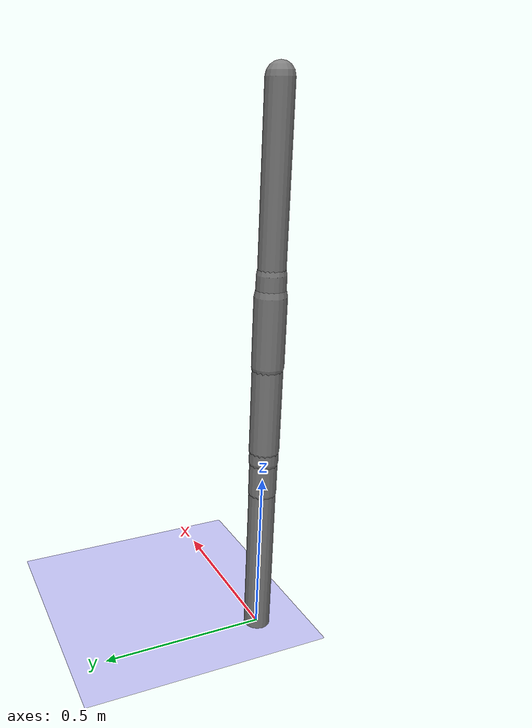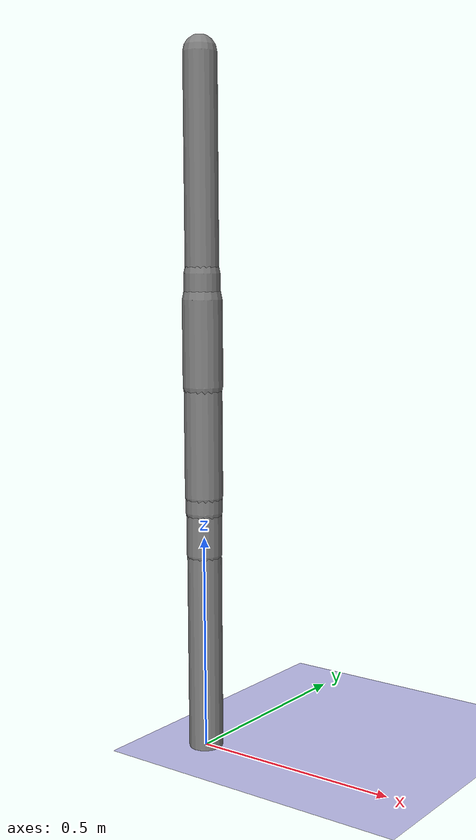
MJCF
<?xml version='1.0' encoding='UTF-8'?>
<mujoco model="robot_model">
  <worldbody>
    <light name="light" pos="0 -3 10" dir="0 0.5 -1" diffuse=".8 .8 .8" specular="0.1 0.1 0.1"/>
    <geom name="floor" type="plane" size="10.0 10.0 0.1" pos="0 0 0" rgba="0.8 0.8 1 1" contype="2" conaffinity="1"/>
    <body name="limb0" pos="0 0 0">
      <geom type="capsule" fromto="0 0 0 0 0 0.6" size="0.04" density="400.0" contype="1" conaffinity="2"/>
      <site type="sphere" size="0.01" name="limb0_site0" pos="0 0 0.4224897400484396"/>
      <freejoint name="limb0_root"/>
      <body name="limb1" pos="0 0 0.4224897400484396">
        <geom type="capsule" fromto="0 0 0 0 0 0.22374799158173964" size="0.029119176085318315" density="452.1334187822219" contype="1" conaffinity="2"/>
        <site type="sphere" size="0.01" name="limb1_site0" pos="0 0 0.13959699440114137"/>
        <site type="sphere" size="0.01" name="limb1_site1" pos="0 0 0.039350103148185524"/>
        <site type="sphere" size="0.01" name="limb1_site2" pos="0 0 0.19102740956826053"/>
        <body name="limb2" pos="0 0 0.13959699440114137">
          <geom type="capsule" fromto="0 0 0 0 0 0.27414987489270753" size="0.04284224053792402" density="615.8114959384828" contype="1" conaffinity="2"/>
          <site type="sphere" size="0.01" name="limb2_site0" pos="0 0 0.0363448103170185"/>
          <body name="limb3" pos="0 0 0.0363448103170185">
            <geom type="capsule" fromto="0 0 0 0 0 0.3159768240312215" size="0.04398226962321314" density="874.9200254675034" contype="1" conaffinity="2"/>
            <joint name="joint_limb2_limb3_0" type="hinge" axis="0 0 1" range="-118.11198317294439 118.11198317294439" damping="5.0"/>
          </body>
          <joint name="joint_limb1_limb2_0" type="hinge" axis="0 1 0" range="-82.7424809592319 82.7424809592319" damping="5.0"/>
        </body>
        <body name="limb4" pos="0 0 0.039350103148185524">
          <geom type="capsule" fromto="0 0 0 0 0 0.31506302920139795" size="0.04118448157082622" density="1024.7729175917539" contype="1" conaffinity="2"/>
          <joint name="joint_limb1_limb4_0" type="hinge" axis="1 0 0" range="-76.57739072162552 76.57739072162552" damping="5.0"/>
        </body>
        <body name="limb5" pos="0 0 0.19102740956826053">
          <geom type="capsule" fromto="0 0 0 0 0 0.5" size="0.04176390226586898" density="1099.8564352385924" contype="1" conaffinity="2"/>
          <site type="sphere" size="0.01" name="limb5_site0" pos="0 0 0.24100166778236712"/>
          <site type="sphere" size="0.01" name="limb5_site1" pos="0 0 0.48870358942959735"/>
          <site type="sphere" size="0.01" name="limb5_site2" pos="0 0 0.25203444162184496"/>
          <body name="limb6" pos="0 0 0.24100166778236712">
            <geom type="capsule" fromto="0 0 0 0 0 0.19942307054689806" size="0.04609395862756084" density="1147.4288306062897" contype="1" conaffinity="2"/>
            <joint name="joint_limb5_limb6_0" type="hinge" axis="0 0 1" range="-97.3556228309299 97.3556228309299" damping="5.0"/>
          </body>
          <body name="limb7" pos="0 0 0.48870358942959735">
            <geom type="capsule" fromto="0 0 0 0 0 0.5" size="0.0387409528111207" density="1014.096068389789" contype="1" conaffinity="2"/>
            <joint name="joint_limb5_limb7_0" type="hinge" axis="0 1 0" range="-112.78288694266163 112.78288694266163" damping="5.0"/>
          </body>
          <body name="limb8" pos="0 0 0.25203444162184496">
            <geom type="capsule" fromto="0 0 0 0 0 0.37166349185855707" size="0.03471472421033268" density="1181.8553192277445" contype="1" conaffinity="2"/>
            <joint name="joint_limb5_limb8_0" type="hinge" axis="0 0 1" range="-106.17964630106378 106.17964630106378" damping="5.0"/>
          </body>
          <joint name="joint_limb1_limb5_0" type="hinge" axis="0 1 0" range="-106.84257521657214 106.84257521657214" damping="5.0"/>
        </body>
        <joint name="joint_limb0_limb1_0" type="hinge" axis="0 1 0" range="-102.24210496044591 102.24210496044591" damping="5.0"/>
      </body>
    </body>
  </worldbody>
  <actuator>
    <position name="position_actuator_joint_limb0_limb1_0" joint="joint_limb0_limb1_0" gear="1.1777902197768442" inheritrange="1" kp="10.0"/>
    <position name="position_actuator_joint_limb1_limb2_0" joint="joint_limb1_limb2_0" gear="0.7360723872815542" inheritrange="1" kp="10.0"/>
    <position name="position_actuator_joint_limb2_limb3_0" joint="joint_limb2_limb3_0" gear="1.2993474610322076" inheritrange="1" kp="10.0"/>
    <position name="position_actuator_joint_limb1_limb4_0" joint="joint_limb1_limb4_0" gear="1.9786544527946286" inheritrange="1" kp="10.0"/>
    <position name="position_actuator_joint_limb1_limb5_0" joint="joint_limb1_limb5_0" gear="1.4252429185165156" inheritrange="1" kp="10.0"/>
    <position name="position_actuator_joint_limb5_limb6_0" joint="joint_limb5_limb6_0" gear="1.2514069354827302" inheritrange="1" kp="10.0"/>
    <position name="position_actuator_joint_limb5_limb7_0" joint="joint_limb5_limb7_0" gear="1.560711091863385" inheritrange="1" kp="10.0"/>
    <position name="position_actuator_joint_limb5_limb8_0" joint="joint_limb5_limb8_0" gear="0.7597488265685853" inheritrange="1" kp="10.0"/>
  </actuator>
</mujoco>
